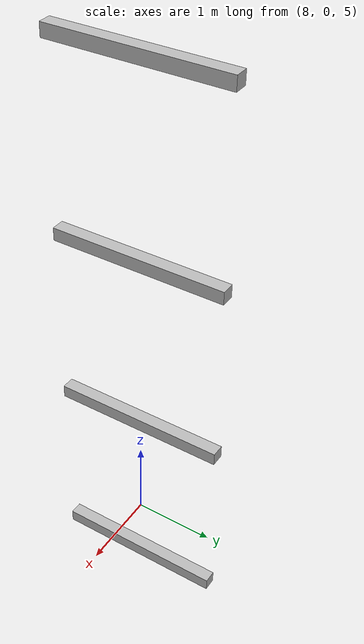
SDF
<sdf version="1.7">
 <world name="default">
  <model name="orthogonal_747_2.000.15_TS">
   <static>1</static>
   <link name="y_link_3_2_7">
    <inertial>
     <mass>1</mass>
     <inertia>
      <ixx>0.166667</ixx>
      <ixy>0</ixy>
      <ixz>0</ixz>
      <iyy>0.166667</iyy>
      <iyz>0</iyz>
      <izz>0.166667</izz>
     </inertia>
    </inertial>
    <pose>15.05 5.375 7.525 0 -0 0</pose>
    <visual name="visual_0">
     <laser_retro>3102</laser_retro>
     <geometry><box><size>0.15 1e-06 0.15</size></box></geometry>
     <material>
      <script><name>Gazebo/Grey</name><uri>file://media/materials/scripts/gazebo.material</uri></script>
      <shader type="pixel"><normal_map>__default__</normal_map></shader>
      <ambient>0.678 0.498 0.659 1</ambient>
      <diffuse>0.7 0.7 0.7 1</diffuse>
      <specular>0.01 0.01 0.01 1</specular>
      <emissive>0 0 0 1</emissive>
     </material>
     <pose>0 -1 0 0 -0 0</pose>
     <transparency>1</transparency>
    </visual>
    <visual name="visual_1">
     <laser_retro>3103</laser_retro>
     <geometry><box><size>0.15 1e-06 0.15</size></box></geometry>
     <material>
      <script><name>Gazebo/Grey</name><uri>file://media/materials/scripts/gazebo.material</uri></script>
      <shader type="pixel"><normal_map>__default__</normal_map></shader>
      <ambient>0.447 0.624 0.812 1</ambient>
      <diffuse>0.7 0.7 0.7 1</diffuse>
      <specular>0.01 0.01 0.01 1</specular>
      <emissive>0 0 0 1</emissive>
     </material>
     <pose>0 1 0 0 -0 0</pose>
     <transparency>1</transparency>
    </visual>
    <visual name="visual_2">
     <laser_retro>3104</laser_retro>
     <geometry><box><size>0.15 2 1e-06</size></box></geometry>
     <material>
      <script><name>Gazebo/Grey</name><uri>file://media/materials/scripts/gazebo.material</uri></script>
      <shader type="pixel"><normal_map>__default__</normal_map></shader>
      <ambient>0.988 0.686 0.243 1</ambient>
      <diffuse>0.7 0.7 0.7 1</diffuse>
      <specular>0.01 0.01 0.01 1</specular>
      <emissive>0 0 0 1</emissive>
     </material>
     <pose>0 0 -0.075 0 -0 0</pose>
     <transparency>1</transparency>
    </visual>
    <visual name="visual_3">
     <laser_retro>3105</laser_retro>
     <geometry><box><size>1e-06 2 0.15</size></box></geometry>
     <material>
      <script><name>Gazebo/Grey</name><uri>file://media/materials/scripts/gazebo.material</uri></script>
      <shader type="pixel"><normal_map>__default__</normal_map></shader>
      <ambient>0.988 0.914 0.31 1</ambient>
      <diffuse>0.7 0.7 0.7 1</diffuse>
      <specular>0.01 0.01 0.01 1</specular>
      <emissive>0 0 0 1</emissive>
     </material>
     <pose>0.075 0 0 0 -0 0</pose>
     <transparency>1</transparency>
    </visual>
    <visual name="visual_4">
     <laser_retro>3106</laser_retro>
     <geometry><box><size>0.15 2 1e-06</size></box></geometry>
     <material>
      <script><name>Gazebo/Grey</name><uri>file://media/materials/scripts/gazebo.material</uri></script>
      <shader type="pixel"><normal_map>__default__</normal_map></shader>
      <ambient>0.937 0.161 0.161 1</ambient>
      <diffuse>0.7 0.7 0.7 1</diffuse>
      <specular>0.01 0.01 0.01 1</specular>
      <emissive>0 0 0 1</emissive>
     </material>
     <pose>0 0 0.075 0 -0 0</pose>
     <transparency>1</transparency>
    </visual>
    <visual name="visual_5">
     <laser_retro>3107</laser_retro>
     <geometry><box><size>1e-06 2 0.15</size></box></geometry>
     <material>
      <script><name>Gazebo/Grey</name><uri>file://media/materials/scripts/gazebo.material</uri></script>
      <shader type="pixel"><normal_map>__default__</normal_map></shader>
      <ambient>0.541 0.886 0.204 1</ambient>
      <diffuse>0.7 0.7 0.7 1</diffuse>
      <specular>0.01 0.01 0.01 1</specular>
      <emissive>0 0 0 1</emissive>
     </material>
     <pose>-0.075 0 0 0 -0 0</pose>
     <transparency>1</transparency>
    </visual>
    <visual name="visual_texture">
     <geometry><box><size>0.149985 1.9998 0.149985</size></box></geometry>
     <material>
      <script>
       <uri>model://BASE_MODELS/simple_block_v2_textured/materials/scripts</uri>
       <uri>model://BASE_MODELS/simple_block_v2_textured/materials/textures</uri>
       <name>metal</name>
      </script>
     </material>
     <laser_retro>3108</laser_retro>
    </visual>
    <collision name="collision">
     <geometry><box><size>0.15 2 0.15</size></box></geometry>
     <surface>
      <friction>
       <ode><mu>1</mu><mu2>1</mu2><fdir1>0 0 0</fdir1><slip1>0</slip1><slip2>0</slip2></ode>
       <torsional>
        <coefficient>1</coefficient>
        <patch_radius>0</patch_radius>
        <surface_radius>0</surface_radius>
        <use_patch_radius>1</use_patch_radius>
        <ode><slip>0</slip></ode>
       </torsional>
      </friction>
      <bounce><restitution_coefficient>0</restitution_coefficient><threshold>1e+06</threshold></bounce>
      <contact>
       <collide_without_contact>0</collide_without_contact>
       <collide_without_contact_bitmask>1</collide_without_contact_bitmask>
       <collide_bitmask>1</collide_bitmask>
       <ode>
        <soft_cfm>0</soft_cfm>
        <soft_erp>0.2</soft_erp>
        <kp>1e+13</kp>
        <kd>1</kd>
        <max_vel>0.01</max_vel>
        <min_depth>0</min_depth>
       </ode>
       <bullet>
        <split_impulse>1</split_impulse>
        <split_impulse_penetration_threshold>-0.01</split_impulse_penetration_threshold>
        <soft_cfm>0</soft_cfm>
        <soft_erp>0.2</soft_erp>
        <kp>1e+13</kp>
        <kd>1</kd>
       </bullet>
      </contact>
     </surface>
    </collision>
   </link>
   <link name="y_link_4_2_7">
    <inertial>
     <mass>1</mass>
     <inertia>
      <ixx>0.166667</ixx>
      <ixy>0</ixy>
      <ixz>0</ixz>
      <iyy>0.166667</iyy>
      <iyz>0</iyz>
      <izz>0.166667</izz>
     </inertia>
    </inertial>
    <pose>15.05 5.375 9.675 0 -0 0</pose>
    <visual name="visual_0">
     <laser_retro>4005</laser_retro>
     <geometry><box><size>0.15 1e-06 0.15</size></box></geometry>
     <material>
      <script><name>Gazebo/Grey</name><uri>file://media/materials/scripts/gazebo.material</uri></script>
      <shader type="pixel"><normal_map>__default__</normal_map></shader>
      <ambient>0.678 0.498 0.659 1</ambient>
      <diffuse>0.7 0.7 0.7 1</diffuse>
      <specular>0.01 0.01 0.01 1</specular>
      <emissive>0 0 0 1</emissive>
     </material>
     <pose>0 -1 0 0 -0 0</pose>
     <transparency>1</transparency>
    </visual>
    <visual name="visual_1">
     <laser_retro>4006</laser_retro>
     <geometry><box><size>0.15 1e-06 0.15</size></box></geometry>
     <material>
      <script><name>Gazebo/Grey</name><uri>file://media/materials/scripts/gazebo.material</uri></script>
      <shader type="pixel"><normal_map>__default__</normal_map></shader>
      <ambient>0.447 0.624 0.812 1</ambient>
      <diffuse>0.7 0.7 0.7 1</diffuse>
      <specular>0.01 0.01 0.01 1</specular>
      <emissive>0 0 0 1</emissive>
     </material>
     <pose>0 1 0 0 -0 0</pose>
     <transparency>1</transparency>
    </visual>
    <visual name="visual_2">
     <laser_retro>4007</laser_retro>
     <geometry><box><size>0.15 2 1e-06</size></box></geometry>
     <material>
      <script><name>Gazebo/Grey</name><uri>file://media/materials/scripts/gazebo.material</uri></script>
      <shader type="pixel"><normal_map>__default__</normal_map></shader>
      <ambient>0.988 0.686 0.243 1</ambient>
      <diffuse>0.7 0.7 0.7 1</diffuse>
      <specular>0.01 0.01 0.01 1</specular>
      <emissive>0 0 0 1</emissive>
     </material>
     <pose>0 0 -0.075 0 -0 0</pose>
     <transparency>1</transparency>
    </visual>
    <visual name="visual_3">
     <laser_retro>4008</laser_retro>
     <geometry><box><size>1e-06 2 0.15</size></box></geometry>
     <material>
      <script><name>Gazebo/Grey</name><uri>file://media/materials/scripts/gazebo.material</uri></script>
      <shader type="pixel"><normal_map>__default__</normal_map></shader>
      <ambient>0.988 0.914 0.31 1</ambient>
      <diffuse>0.7 0.7 0.7 1</diffuse>
      <specular>0.01 0.01 0.01 1</specular>
      <emissive>0 0 0 1</emissive>
     </material>
     <pose>0.075 0 0 0 -0 0</pose>
     <transparency>1</transparency>
    </visual>
    <visual name="visual_4">
     <laser_retro>4009</laser_retro>
     <geometry><box><size>0.15 2 1e-06</size></box></geometry>
     <material>
      <script><name>Gazebo/Grey</name><uri>file://media/materials/scripts/gazebo.material</uri></script>
      <shader type="pixel"><normal_map>__default__</normal_map></shader>
      <ambient>0.937 0.161 0.161 1</ambient>
      <diffuse>0.7 0.7 0.7 1</diffuse>
      <specular>0.01 0.01 0.01 1</specular>
      <emissive>0 0 0 1</emissive>
     </material>
     <pose>0 0 0.075 0 -0 0</pose>
     <transparency>1</transparency>
    </visual>
    <visual name="visual_5">
     <laser_retro>4010</laser_retro>
     <geometry><box><size>1e-06 2 0.15</size></box></geometry>
     <material>
      <script><name>Gazebo/Grey</name><uri>file://media/materials/scripts/gazebo.material</uri></script>
      <shader type="pixel"><normal_map>__default__</normal_map></shader>
      <ambient>0.541 0.886 0.204 1</ambient>
      <diffuse>0.7 0.7 0.7 1</diffuse>
      <specular>0.01 0.01 0.01 1</specular>
      <emissive>0 0 0 1</emissive>
     </material>
     <pose>-0.075 0 0 0 -0 0</pose>
     <transparency>1</transparency>
    </visual>
    <visual name="visual_texture">
     <geometry><box><size>0.149985 1.9998 0.149985</size></box></geometry>
     <material>
      <script>
       <uri>model://BASE_MODELS/simple_block_v2_textured/materials/scripts</uri>
       <uri>model://BASE_MODELS/simple_block_v2_textured/materials/textures</uri>
       <name>metal</name>
      </script>
     </material>
     <laser_retro>4011</laser_retro>
    </visual>
    <collision name="collision">
     <geometry><box><size>0.15 2 0.15</size></box></geometry>
     <surface>
      <friction>
       <ode><mu>1</mu><mu2>1</mu2><fdir1>0 0 0</fdir1><slip1>0</slip1><slip2>0</slip2></ode>
       <torsional>
        <coefficient>1</coefficient>
        <patch_radius>0</patch_radius>
        <surface_radius>0</surface_radius>
        <use_patch_radius>1</use_patch_radius>
        <ode><slip>0</slip></ode>
       </torsional>
      </friction>
      <bounce><restitution_coefficient>0</restitution_coefficient><threshold>1e+06</threshold></bounce>
      <contact>
       <collide_without_contact>0</collide_without_contact>
       <collide_without_contact_bitmask>1</collide_without_contact_bitmask>
       <collide_bitmask>1</collide_bitmask>
       <ode>
        <soft_cfm>0</soft_cfm>
        <soft_erp>0.2</soft_erp>
        <kp>1e+13</kp>
        <kd>1</kd>
        <max_vel>0.01</max_vel>
        <min_depth>0</min_depth>
       </ode>
       <bullet>
        <split_impulse>1</split_impulse>
        <split_impulse_penetration_threshold>-0.01</split_impulse_penetration_threshold>
        <soft_cfm>0</soft_cfm>
        <soft_erp>0.2</soft_erp>
        <kp>1e+13</kp>
        <kd>1</kd>
       </bullet>
      </contact>
     </surface>
    </collision>
   </link>
   <link name="y_link_5_2_7">
    <inertial>
     <mass>1</mass>
     <inertia>
      <ixx>0.166667</ixx>
      <ixy>0</ixy>
      <ixz>0</ixz>
      <iyy>0.166667</iyy>
      <iyz>0</iyz>
      <izz>0.166667</izz>
     </inertia>
    </inertial>
    <pose>15.05 5.375 11.825 0 -0 0</pose>
    <visual name="visual_0">
     <laser_retro>4908</laser_retro>
     <geometry><box><size>0.15 1e-06 0.15</size></box></geometry>
     <material>
      <script><name>Gazebo/Grey</name><uri>file://media/materials/scripts/gazebo.material</uri></script>
      <shader type="pixel"><normal_map>__default__</normal_map></shader>
      <ambient>0.678 0.498 0.659 1</ambient>
      <diffuse>0.7 0.7 0.7 1</diffuse>
      <specular>0.01 0.01 0.01 1</specular>
      <emissive>0 0 0 1</emissive>
     </material>
     <pose>0 -1 0 0 -0 0</pose>
     <transparency>1</transparency>
    </visual>
    <visual name="visual_1">
     <laser_retro>4909</laser_retro>
     <geometry><box><size>0.15 1e-06 0.15</size></box></geometry>
     <material>
      <script><name>Gazebo/Grey</name><uri>file://media/materials/scripts/gazebo.material</uri></script>
      <shader type="pixel"><normal_map>__default__</normal_map></shader>
      <ambient>0.447 0.624 0.812 1</ambient>
      <diffuse>0.7 0.7 0.7 1</diffuse>
      <specular>0.01 0.01 0.01 1</specular>
      <emissive>0 0 0 1</emissive>
     </material>
     <pose>0 1 0 0 -0 0</pose>
     <transparency>1</transparency>
    </visual>
    <visual name="visual_2">
     <laser_retro>4910</laser_retro>
     <geometry><box><size>0.15 2 1e-06</size></box></geometry>
     <material>
      <script><name>Gazebo/Grey</name><uri>file://media/materials/scripts/gazebo.material</uri></script>
      <shader type="pixel"><normal_map>__default__</normal_map></shader>
      <ambient>0.988 0.686 0.243 1</ambient>
      <diffuse>0.7 0.7 0.7 1</diffuse>
      <specular>0.01 0.01 0.01 1</specular>
      <emissive>0 0 0 1</emissive>
     </material>
     <pose>0 0 -0.075 0 -0 0</pose>
     <transparency>1</transparency>
    </visual>
    <visual name="visual_3">
     <laser_retro>4911</laser_retro>
     <geometry><box><size>1e-06 2 0.15</size></box></geometry>
     <material>
      <script><name>Gazebo/Grey</name><uri>file://media/materials/scripts/gazebo.material</uri></script>
      <shader type="pixel"><normal_map>__default__</normal_map></shader>
      <ambient>0.988 0.914 0.31 1</ambient>
      <diffuse>0.7 0.7 0.7 1</diffuse>
      <specular>0.01 0.01 0.01 1</specular>
      <emissive>0 0 0 1</emissive>
     </material>
     <pose>0.075 0 0 0 -0 0</pose>
     <transparency>1</transparency>
    </visual>
    <visual name="visual_4">
     <laser_retro>4912</laser_retro>
     <geometry><box><size>0.15 2 1e-06</size></box></geometry>
     <material>
      <script><name>Gazebo/Grey</name><uri>file://media/materials/scripts/gazebo.material</uri></script>
      <shader type="pixel"><normal_map>__default__</normal_map></shader>
      <ambient>0.937 0.161 0.161 1</ambient>
      <diffuse>0.7 0.7 0.7 1</diffuse>
      <specular>0.01 0.01 0.01 1</specular>
      <emissive>0 0 0 1</emissive>
     </material>
     <pose>0 0 0.075 0 -0 0</pose>
     <transparency>1</transparency>
    </visual>
    <visual name="visual_5">
     <laser_retro>4913</laser_retro>
     <geometry><box><size>1e-06 2 0.15</size></box></geometry>
     <material>
      <script><name>Gazebo/Grey</name><uri>file://media/materials/scripts/gazebo.material</uri></script>
      <shader type="pixel"><normal_map>__default__</normal_map></shader>
      <ambient>0.541 0.886 0.204 1</ambient>
      <diffuse>0.7 0.7 0.7 1</diffuse>
      <specular>0.01 0.01 0.01 1</specular>
      <emissive>0 0 0 1</emissive>
     </material>
     <pose>-0.075 0 0 0 -0 0</pose>
     <transparency>1</transparency>
    </visual>
    <visual name="visual_texture">
     <geometry><box><size>0.149985 1.9998 0.149985</size></box></geometry>
     <material>
      <script>
       <uri>model://BASE_MODELS/simple_block_v2_textured/materials/scripts</uri>
       <uri>model://BASE_MODELS/simple_block_v2_textured/materials/textures</uri>
       <name>metal</name>
      </script>
     </material>
     <laser_retro>4914</laser_retro>
    </visual>
    <collision name="collision">
     <geometry><box><size>0.15 2 0.15</size></box></geometry>
     <surface>
      <friction>
       <ode><mu>1</mu><mu2>1</mu2><fdir1>0 0 0</fdir1><slip1>0</slip1><slip2>0</slip2></ode>
       <torsional>
        <coefficient>1</coefficient>
        <patch_radius>0</patch_radius>
        <surface_radius>0</surface_radius>
        <use_patch_radius>1</use_patch_radius>
        <ode><slip>0</slip></ode>
       </torsional>
      </friction>
      <bounce><restitution_coefficient>0</restitution_coefficient><threshold>1e+06</threshold></bounce>
      <contact>
       <collide_without_contact>0</collide_without_contact>
       <collide_without_contact_bitmask>1</collide_without_contact_bitmask>
       <collide_bitmask>1</collide_bitmask>
       <ode>
        <soft_cfm>0</soft_cfm>
        <soft_erp>0.2</soft_erp>
        <kp>1e+13</kp>
        <kd>1</kd>
        <max_vel>0.01</max_vel>
        <min_depth>0</min_depth>
       </ode>
       <bullet>
        <split_impulse>1</split_impulse>
        <split_impulse_penetration_threshold>-0.01</split_impulse_penetration_threshold>
        <soft_cfm>0</soft_cfm>
        <soft_erp>0.2</soft_erp>
        <kp>1e+13</kp>
        <kd>1</kd>
       </bullet>
      </contact>
     </surface>
    </collision>
   </link>
   <link name="y_link_6_2_7">
    <inertial>
     <mass>1</mass>
     <inertia>
      <ixx>0.166667</ixx>
      <ixy>0</ixy>
      <ixz>0</ixz>
      <iyy>0.166667</iyy>
      <iyz>0</iyz>
      <izz>0.166667</izz>
     </inertia>
    </inertial>
    <pose>15.05 5.375 13.975 0 -0 0</pose>
    <visual name="visual_0">
     <laser_retro>5895</laser_retro>
     <geometry><box><size>0.15 1e-06 0.15</size></box></geometry>
     <material>
      <script><name>Gazebo/Grey</name><uri>file://media/materials/scripts/gazebo.material</uri></script>
      <shader type="pixel"><normal_map>__default__</normal_map></shader>
      <ambient>0.678 0.498 0.659 1</ambient>
      <diffuse>0.7 0.7 0.7 1</diffuse>
      <specular>0.01 0.01 0.01 1</specular>
      <emissive>0 0 0 1</emissive>
     </material>
     <pose>0 -1 0 0 -0 0</pose>
     <transparency>1</transparency>
    </visual>
    <visual name="visual_1">
     <laser_retro>5896</laser_retro>
     <geometry><box><size>0.15 1e-06 0.15</size></box></geometry>
     <material>
      <script><name>Gazebo/Grey</name><uri>file://media/materials/scripts/gazebo.material</uri></script>
      <shader type="pixel"><normal_map>__default__</normal_map></shader>
      <ambient>0.447 0.624 0.812 1</ambient>
      <diffuse>0.7 0.7 0.7 1</diffuse>
      <specular>0.01 0.01 0.01 1</specular>
      <emissive>0 0 0 1</emissive>
     </material>
     <pose>0 1 0 0 -0 0</pose>
     <transparency>1</transparency>
    </visual>
    <visual name="visual_2">
     <laser_retro>5897</laser_retro>
     <geometry><box><size>0.15 2 1e-06</size></box></geometry>
     <material>
      <script><name>Gazebo/Grey</name><uri>file://media/materials/scripts/gazebo.material</uri></script>
      <shader type="pixel"><normal_map>__default__</normal_map></shader>
      <ambient>0.988 0.686 0.243 1</ambient>
      <diffuse>0.7 0.7 0.7 1</diffuse>
      <specular>0.01 0.01 0.01 1</specular>
      <emissive>0 0 0 1</emissive>
     </material>
     <pose>0 0 -0.075 0 -0 0</pose>
     <transparency>1</transparency>
    </visual>
    <visual name="visual_3">
     <laser_retro>5898</laser_retro>
     <geometry><box><size>1e-06 2 0.15</size></box></geometry>
     <material>
      <script><name>Gazebo/Grey</name><uri>file://media/materials/scripts/gazebo.material</uri></script>
      <shader type="pixel"><normal_map>__default__</normal_map></shader>
      <ambient>0.988 0.914 0.31 1</ambient>
      <diffuse>0.7 0.7 0.7 1</diffuse>
      <specular>0.01 0.01 0.01 1</specular>
      <emissive>0 0 0 1</emissive>
     </material>
     <pose>0.075 0 0 0 -0 0</pose>
     <transparency>1</transparency>
    </visual>
    <visual name="visual_4">
     <laser_retro>5899</laser_retro>
     <geometry><box><size>0.15 2 1e-06</size></box></geometry>
     <material>
      <script><name>Gazebo/Grey</name><uri>file://media/materials/scripts/gazebo.material</uri></script>
      <shader type="pixel"><normal_map>__default__</normal_map></shader>
      <ambient>0.937 0.161 0.161 1</ambient>
      <diffuse>0.7 0.7 0.7 1</diffuse>
      <specular>0.01 0.01 0.01 1</specular>
      <emissive>0 0 0 1</emissive>
     </material>
     <pose>0 0 0.075 0 -0 0</pose>
     <transparency>1</transparency>
    </visual>
    <visual name="visual_5">
     <laser_retro>5900</laser_retro>
     <geometry><box><size>1e-06 2 0.15</size></box></geometry>
     <material>
      <script><name>Gazebo/Grey</name><uri>file://media/materials/scripts/gazebo.material</uri></script>
      <shader type="pixel"><normal_map>__default__</normal_map></shader>
      <ambient>0.541 0.886 0.204 1</ambient>
      <diffuse>0.7 0.7 0.7 1</diffuse>
      <specular>0.01 0.01 0.01 1</specular>
      <emissive>0 0 0 1</emissive>
     </material>
     <pose>-0.075 0 0 0 -0 0</pose>
     <transparency>1</transparency>
    </visual>
    <visual name="visual_texture">
     <geometry><box><size>0.149985 1.9998 0.149985</size></box></geometry>
     <material>
      <script>
       <uri>model://BASE_MODELS/simple_block_v2_textured/materials/scripts</uri>
       <uri>model://BASE_MODELS/simple_block_v2_textured/materials/textures</uri>
       <name>metal</name>
      </script>
     </material>
     <laser_retro>5901</laser_retro>
    </visual>
    <collision name="collision">
     <geometry><box><size>0.15 2 0.15</size></box></geometry>
     <surface>
      <friction>
       <ode><mu>1</mu><mu2>1</mu2><fdir1>0 0 0</fdir1><slip1>0</slip1><slip2>0</slip2></ode>
       <torsional>
        <coefficient>1</coefficient>
        <patch_radius>0</patch_radius>
        <surface_radius>0</surface_radius>
        <use_patch_radius>1</use_patch_radius>
        <ode><slip>0</slip></ode>
       </torsional>
      </friction>
      <bounce><restitution_coefficient>0</restitution_coefficient><threshold>1e+06</threshold></bounce>
      <contact>
       <collide_without_contact>0</collide_without_contact>
       <collide_without_contact_bitmask>1</collide_without_contact_bitmask>
       <collide_bitmask>1</collide_bitmask>
       <ode>
        <soft_cfm>0</soft_cfm>
        <soft_erp>0.2</soft_erp>
        <kp>1e+13</kp>
        <kd>1</kd>
        <max_vel>0.01</max_vel>
        <min_depth>0</min_depth>
       </ode>
       <bullet>
        <split_impulse>1</split_impulse>
        <split_impulse_penetration_threshold>-0.01</split_impulse_penetration_threshold>
        <soft_cfm>0</soft_cfm>
        <soft_erp>0.2</soft_erp>
        <kp>1e+13</kp>
        <kd>1</kd>
       </bullet>
      </contact>
     </surface>
    </collision>
   </link>
   <pose>-6.47624 -5 -2.5 0 -0 0</pose>
  </model>
 </world>
</sdf>
